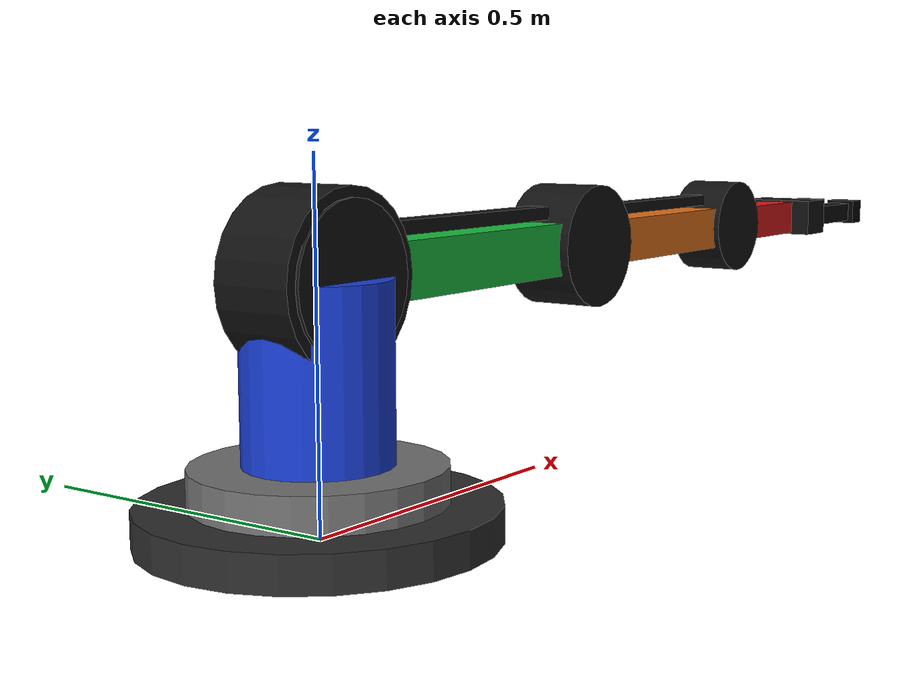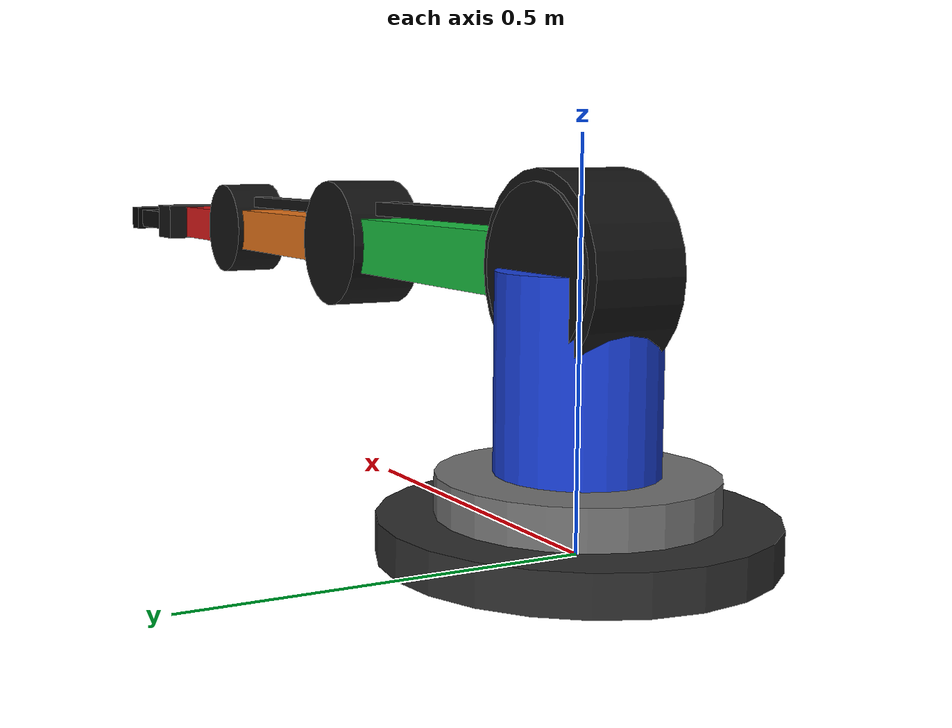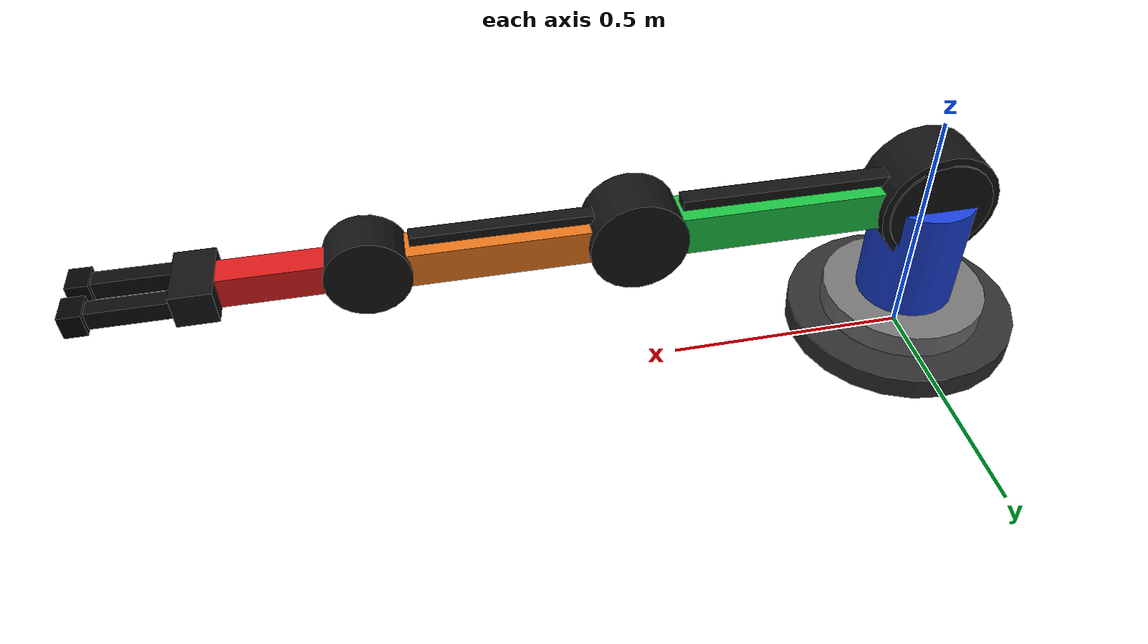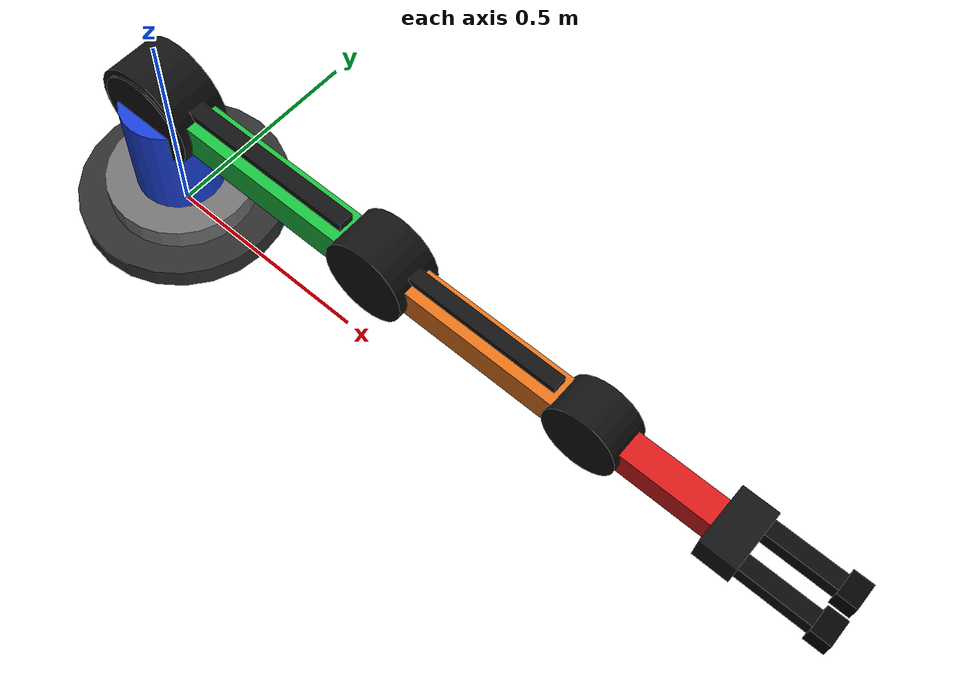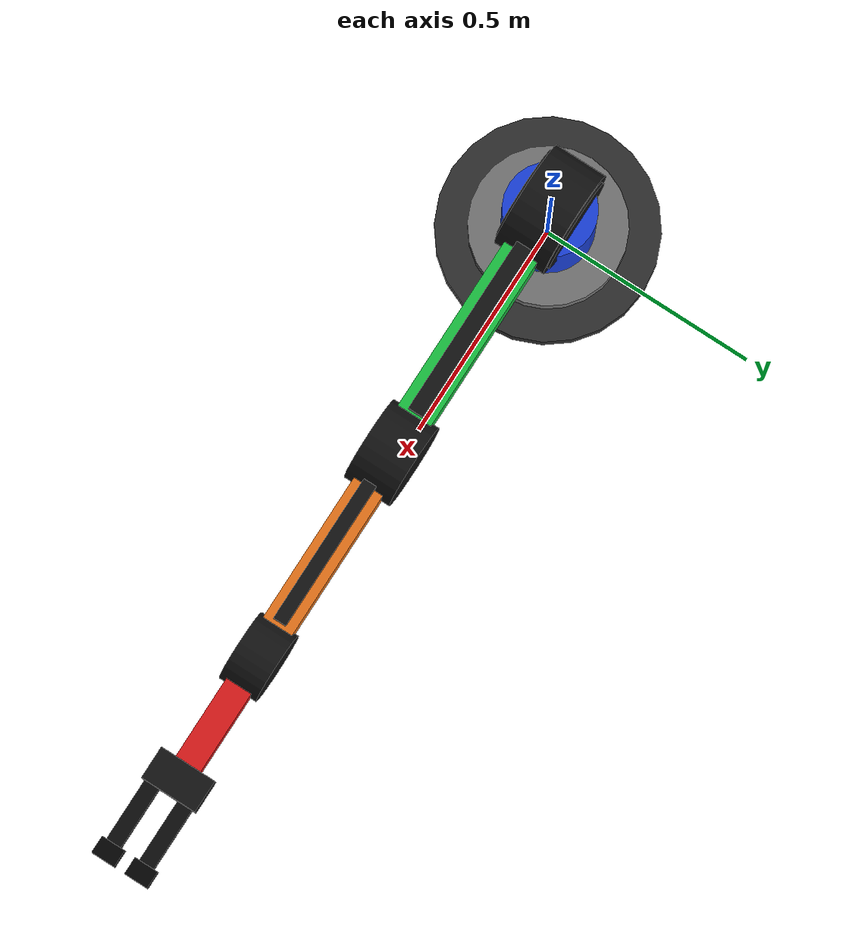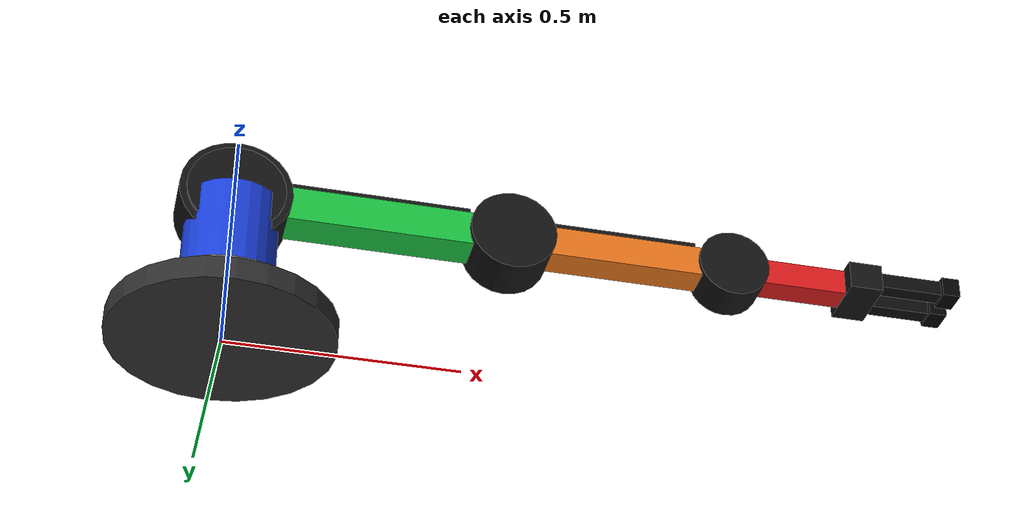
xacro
<?xml version="1.0"?>
<robot name="gesture_arm" xmlns:xacro="http://www.ros.org/wiki/xacro">

  <xacro:arg name="controllers_file" default=""/>

  <xacro:macro name="simple_inertial" params="mass ixx iyy izz">
    <inertial>
      <mass value="${mass}"/>
      <origin xyz="0 0 0" rpy="0 0 0"/>
      <inertia ixx="${ixx}" ixy="0" ixz="0" iyy="${iyy}" iyz="0" izz="${izz}"/>
    </inertial>
  </xacro:macro>

  <!-- 全局材质 -->
  <material name="mat_base_dark">
    <color rgba="0.18 0.18 0.18 1"/>
  </material>

  <material name="mat_base_gray">
    <color rgba="0.45 0.45 0.45 1"/>
  </material>

  <material name="mat_blue">
    <color rgba="0.10 0.25 0.85 1"/>
  </material>

  <material name="mat_green">
    <color rgba="0.10 0.75 0.25 1"/>
  </material>

  <material name="mat_orange">
    <color rgba="0.90 0.45 0.10 1"/>
  </material>

  <material name="mat_red">
    <color rgba="0.85 0.10 0.10 1"/>
  </material>

  <material name="mat_joint_dark">
    <color rgba="0.07 0.07 0.07 1"/>
  </material>

  <material name="mat_finger_dark">
    <color rgba="0.04 0.04 0.04 1"/>
  </material>

  <material name="mat_pad">
    <color rgba="0.01 0.01 0.01 1"/>
  </material>

  <link name="world"/>

  <!--
    坐标设计说明：
    base_link的顶部关节base_joint在z=0.10。
    因此底座所有visual的最高点不能超过z=0.10，
    否则会和turret_link视觉上重叠，看起来像零件错位。
  -->
  <link name="base_link">
    <visual>
      <origin xyz="0 0 0.025" rpy="0 0 0"/>
      <geometry>
        <cylinder radius="0.24" length="0.05"/>
      </geometry>
      <material name="mat_base_dark"/>
    </visual>

    <visual>
      <origin xyz="0 0 0.075" rpy="0 0 0"/>
      <geometry>
        <cylinder radius="0.17" length="0.05"/>
      </geometry>
      <material name="mat_base_gray"/>
    </visual>

    <collision>
      <origin xyz="0 0 0.05" rpy="0 0 0"/>
      <geometry>
        <cylinder radius="0.18" length="0.10"/>
      </geometry>
    </collision>

    <xacro:simple_inertial mass="2.0" ixx="0.02" iyy="0.02" izz="0.02"/>
  </link>

  <joint name="world_to_base" type="fixed">
    <parent link="world"/>
    <child link="base_link"/>
    <origin xyz="0 0 0" rpy="0 0 0"/>
  </joint>

  <!-- turret_link的坐标原点位于base_joint，即世界z=0.10 -->
  <link name="turret_link">
    <visual>
      <origin xyz="0 0 0.12" rpy="0 0 0"/>
      <geometry>
        <cylinder radius="0.10" length="0.24"/>
      </geometry>
      <material name="mat_blue"/>
    </visual>

    <!-- 顶部肩关节外壳：正好放在shoulder_joint位置z=0.24 -->
    <visual>
      <origin xyz="0 0 0.24" rpy="1.5708 0 0"/>
      <geometry>
        <cylinder radius="0.12" length="0.12"/>
      </geometry>
      <material name="mat_joint_dark"/>
    </visual>

    <collision>
      <origin xyz="0 0 0.12" rpy="0 0 0"/>
      <geometry>
        <cylinder radius="0.10" length="0.24"/>
      </geometry>
    </collision>

    <xacro:simple_inertial mass="1.0" ixx="0.01" iyy="0.01" izz="0.01"/>
  </link>

  <joint name="base_joint" type="revolute">
    <parent link="base_link"/>
    <child link="turret_link"/>
    <origin xyz="0 0 0.10" rpy="0 0 0"/>
    <axis xyz="0 0 1"/>
    <limit lower="-3.14" upper="3.14" effort="100" velocity="1.5"/>
    <dynamics damping="0.2" friction="0.1"/>
  </joint>

  <!-- upper_arm_link的坐标原点位于shoulder_joint -->
  <link name="upper_arm_link">
    <!-- 大臂主体：从x=0延伸到x=0.60 -->
    <visual>
      <origin xyz="0.30 0 0" rpy="0 0 0"/>
      <geometry>
        <box size="0.60 0.08 0.08"/>
      </geometry>
      <material name="mat_green"/>
    </visual>

    <!-- 肩部随动外壳：正好围绕upper_arm_link原点 -->
    <visual>
      <origin xyz="0.00 0 0" rpy="1.5708 0 0"/>
      <geometry>
        <cylinder radius="0.105" length="0.13"/>
      </geometry>
      <material name="mat_joint_dark"/>
    </visual>

    <!-- 肘部外壳：正好围绕elbow_joint位置x=0.60 -->
    <visual>
      <origin xyz="0.60 0 0" rpy="1.5708 0 0"/>
      <geometry>
        <cylinder radius="0.095" length="0.11"/>
      </geometry>
      <material name="mat_joint_dark"/>
    </visual>

    <!-- 顶部装饰条：在主体上方，不改变结构 -->
    <visual>
      <origin xyz="0.30 0 0.055" rpy="0 0 0"/>
      <geometry>
        <box size="0.42 0.035 0.020"/>
      </geometry>
      <material name="mat_joint_dark"/>
    </visual>

    <collision>
      <origin xyz="0.30 0 0" rpy="0 0 0"/>
      <geometry>
        <box size="0.60 0.08 0.08"/>
      </geometry>
    </collision>

    <xacro:simple_inertial mass="0.8" ixx="0.01" iyy="0.04" izz="0.04"/>
  </link>

  <joint name="shoulder_joint" type="revolute">
    <parent link="turret_link"/>
    <child link="upper_arm_link"/>
    <origin xyz="0 0 0.24" rpy="0 0 0"/>
    <axis xyz="0 1 0"/>
    <limit lower="-1.2" upper="1.2" effort="100" velocity="1.5"/>
    <dynamics damping="0.2" friction="0.1"/>
  </joint>

  <!-- forearm_link的坐标原点位于elbow_joint -->
  <link name="forearm_link">
    <!-- 小臂主体：从x=0延伸到x=0.50 -->
    <visual>
      <origin xyz="0.25 0 0" rpy="0 0 0"/>
      <geometry>
        <box size="0.50 0.07 0.07"/>
      </geometry>
      <material name="mat_orange"/>
    </visual>

    <!-- 肘部随动外壳：围绕forearm_link原点 -->
    <visual>
      <origin xyz="0.00 0 0" rpy="1.5708 0 0"/>
      <geometry>
        <cylinder radius="0.090" length="0.10"/>
      </geometry>
      <material name="mat_joint_dark"/>
    </visual>

    <!-- 腕部外壳：正好围绕wrist_joint位置x=0.50 -->
    <visual>
      <origin xyz="0.50 0 0" rpy="1.5708 0 0"/>
      <geometry>
        <cylinder radius="0.080" length="0.09"/>
      </geometry>
      <material name="mat_joint_dark"/>
    </visual>

    <!-- 顶部装饰条 -->
    <visual>
      <origin xyz="0.25 0 0.050" rpy="0 0 0"/>
      <geometry>
        <box size="0.34 0.030 0.018"/>
      </geometry>
      <material name="mat_joint_dark"/>
    </visual>

    <collision>
      <origin xyz="0.25 0 0" rpy="0 0 0"/>
      <geometry>
        <box size="0.50 0.07 0.07"/>
      </geometry>
    </collision>

    <xacro:simple_inertial mass="0.6" ixx="0.01" iyy="0.03" izz="0.03"/>
  </link>

  <joint name="elbow_joint" type="revolute">
    <parent link="upper_arm_link"/>
    <child link="forearm_link"/>
    <origin xyz="0.60 0 0" rpy="0 0 0"/>
    <axis xyz="0 1 0"/>
    <limit lower="-1.5" upper="1.5" effort="100" velocity="1.5"/>
    <dynamics damping="0.2" friction="0.1"/>
  </joint>

  <!-- wrist_link的坐标原点位于wrist_joint -->
  <link name="wrist_link">
    <!-- 腕部主体：从x=0延伸到x=0.30 -->
    <visual>
      <origin xyz="0.15 0 0" rpy="0 0 0"/>
      <geometry>
        <box size="0.30 0.06 0.06"/>
      </geometry>
      <material name="mat_red"/>
    </visual>

    <!-- 腕部随动外壳：围绕wrist_link原点 -->
    <visual>
      <origin xyz="0.00 0 0" rpy="1.5708 0 0"/>
      <geometry>
        <cylinder radius="0.075" length="0.08"/>
      </geometry>
      <material name="mat_joint_dark"/>
    </visual>

    <!-- 夹爪基座：位于两个finger_joint共同的x=0.30处 -->
    <visual>
      <origin xyz="0.30 0 0" rpy="0 0 0"/>
      <geometry>
        <box size="0.075 0.13 0.065"/>
      </geometry>
      <material name="mat_joint_dark"/>
    </visual>

    <collision>
      <origin xyz="0.15 0 0" rpy="0 0 0"/>
      <geometry>
        <box size="0.30 0.06 0.06"/>
      </geometry>
    </collision>

    <xacro:simple_inertial mass="0.4" ixx="0.005" iyy="0.015" izz="0.015"/>
  </link>

  <joint name="wrist_joint" type="revolute">
    <parent link="forearm_link"/>
    <child link="wrist_link"/>
    <origin xyz="0.50 0 0" rpy="0 0 0"/>
    <axis xyz="0 1 0"/>
    <limit lower="-1.5" upper="1.5" effort="80" velocity="1.5"/>
    <dynamics damping="0.2" friction="0.1"/>
  </joint>

  <!--
    夹爪修正：
    left_finger_joint本身已经在y=+0.04，
    right_finger_joint本身已经在y=-0.04。
    所以finger_link内部visual的y应为0，不能再额外写+/-0.02，
    否则视觉上会二次偏移。
  -->
  <link name="left_finger_link">
    <visual>
      <origin xyz="0.10 0 0" rpy="0 0 0"/>
      <geometry>
        <box size="0.20 0.035 0.035"/>
      </geometry>
      <material name="mat_finger_dark"/>
    </visual>

    <visual>
      <origin xyz="0.20 0 0" rpy="0 0 0"/>
      <geometry>
        <box size="0.04 0.055 0.045"/>
      </geometry>
      <material name="mat_pad"/>
    </visual>

    <collision>
      <origin xyz="0.10 0 0" rpy="0 0 0"/>
      <geometry>
        <box size="0.20 0.035 0.035"/>
      </geometry>
    </collision>

    <xacro:simple_inertial mass="0.1" ixx="0.001" iyy="0.001" izz="0.001"/>
  </link>

  <joint name="left_finger_joint" type="revolute">
    <parent link="wrist_link"/>
    <child link="left_finger_link"/>
    <origin xyz="0.30 0.04 0" rpy="0 0 0"/>
    <axis xyz="0 0 1"/>
    <limit lower="0.0" upper="0.7" effort="20" velocity="1.0"/>
    <dynamics damping="0.1" friction="0.05"/>
  </joint>

  <link name="right_finger_link">
    <visual>
      <origin xyz="0.10 0 0" rpy="0 0 0"/>
      <geometry>
        <box size="0.20 0.035 0.035"/>
      </geometry>
      <material name="mat_finger_dark"/>
    </visual>

    <visual>
      <origin xyz="0.20 0 0" rpy="0 0 0"/>
      <geometry>
        <box size="0.04 0.055 0.045"/>
      </geometry>
      <material name="mat_pad"/>
    </visual>

    <collision>
      <origin xyz="0.10 0 0" rpy="0 0 0"/>
      <geometry>
        <box size="0.20 0.035 0.035"/>
      </geometry>
    </collision>

    <xacro:simple_inertial mass="0.1" ixx="0.001" iyy="0.001" izz="0.001"/>
  </link>

  <joint name="right_finger_joint" type="revolute">
    <parent link="wrist_link"/>
    <child link="right_finger_link"/>
    <origin xyz="0.30 -0.04 0" rpy="0 0 0"/>
    <axis xyz="0 0 1"/>
    <limit lower="-0.7" upper="0.0" effort="20" velocity="1.0"/>
    <dynamics damping="0.1" friction="0.05"/>
  </joint>

  <ros2_control name="GazeboSimSystem" type="system">
    <hardware>
      <plugin>gz_ros2_control/GazeboSimSystem</plugin>
    </hardware>

    <joint name="base_joint">
      <command_interface name="position">
        <param name="min">-3.14</param>
        <param name="max">3.14</param>
      </command_interface>
      <state_interface name="position"/>
      <state_interface name="velocity"/>
    </joint>

    <joint name="shoulder_joint">
      <command_interface name="position">
        <param name="min">-1.2</param>
        <param name="max">1.2</param>
      </command_interface>
      <state_interface name="position"/>
      <state_interface name="velocity"/>
    </joint>

    <joint name="elbow_joint">
      <command_interface name="position">
        <param name="min">-1.5</param>
        <param name="max">1.5</param>
      </command_interface>
      <state_interface name="position"/>
      <state_interface name="velocity"/>
    </joint>

    <joint name="wrist_joint">
      <command_interface name="position">
        <param name="min">-1.5</param>
        <param name="max">1.5</param>
      </command_interface>
      <state_interface name="position"/>
      <state_interface name="velocity"/>
    </joint>

    <joint name="left_finger_joint">
      <command_interface name="position">
        <param name="min">0.0</param>
        <param name="max">0.7</param>
      </command_interface>
      <state_interface name="position"/>
      <state_interface name="velocity"/>
    </joint>

    <joint name="right_finger_joint">
      <command_interface name="position">
        <param name="min">-0.7</param>
        <param name="max">0.0</param>
      </command_interface>
      <state_interface name="position"/>
      <state_interface name="velocity"/>
    </joint>
  </ros2_control>

  <!--
    HCI展示模式：关闭各link重力。
    原因：该虚拟机械臂是水平悬臂结构，如果启用重力，
    在控制器初始化或无持续指令时可能会发生自发倾斜/下垂/回弹。
    关闭重力后，机械臂只响应手势控制指令，更适合课堂演示。
  -->
  <gazebo reference="base_link">
    <gravity>false</gravity>
  </gazebo>

  <gazebo reference="turret_link">
    <gravity>false</gravity>
  </gazebo>

  <gazebo reference="upper_arm_link">
    <gravity>false</gravity>
  </gazebo>

  <gazebo reference="forearm_link">
    <gravity>false</gravity>
  </gazebo>

  <gazebo reference="wrist_link">
    <gravity>false</gravity>
  </gazebo>

  <gazebo reference="left_finger_link">
    <gravity>false</gravity>
  </gazebo>

  <gazebo reference="right_finger_link">
    <gravity>false</gravity>
  </gazebo>

  <gazebo>
    <plugin filename="libgz_ros2_control-system.so"
            name="gz_ros2_control::GazeboSimROS2ControlPlugin">
      <parameters>$(arg controllers_file)</parameters>
    </plugin>
  </gazebo>

</robot>
